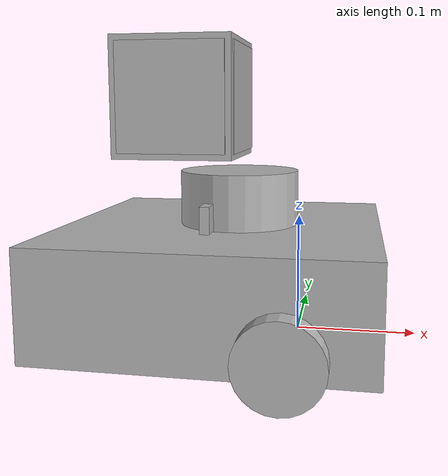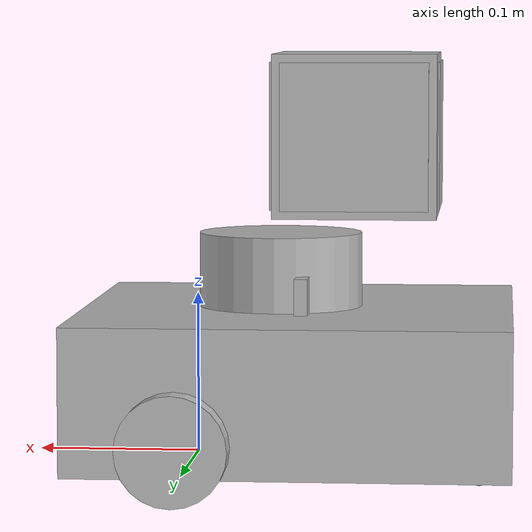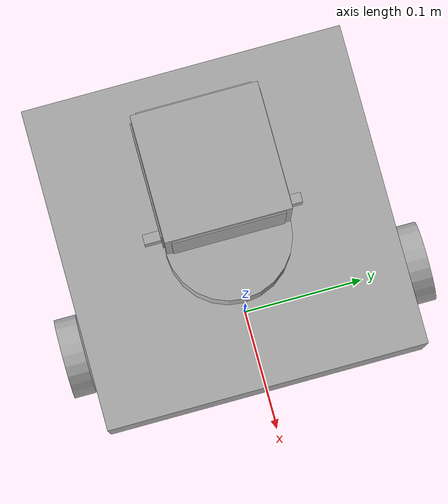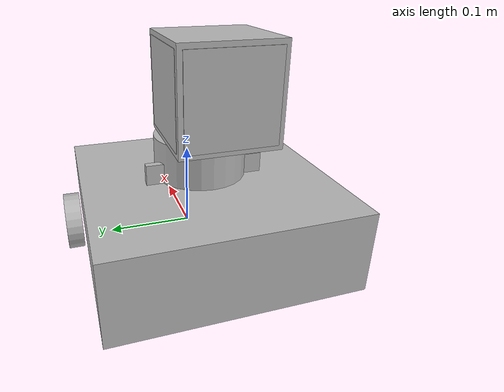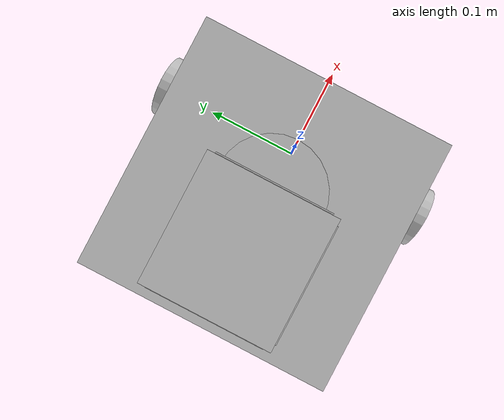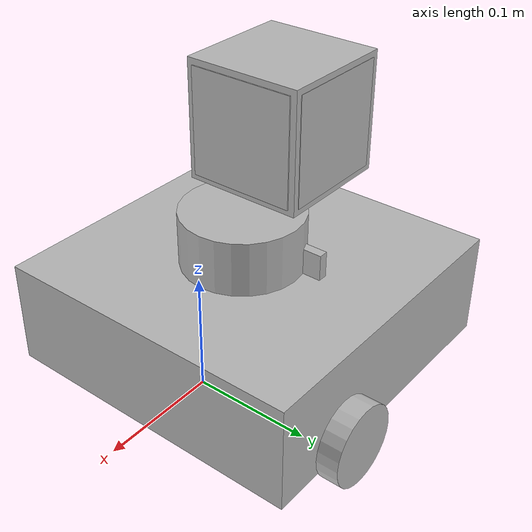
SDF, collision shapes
<?xml version="1.0" ?>
<sdf version="1.4">
  <model name="waffle_pi_1">
<pose>0 0 0 0 0 0</pose>
    <link name="base">

      <inertial>
        <pose>-0.064 0 0.048 0 0 0</pose>
        <inertia>
          <ixx>0.001</ixx>
          <ixy>0.000</ixy>
          <ixz>0.000</ixz>
          <iyy>0.001</iyy>
          <iyz>0.000</iyz>
          <izz>0.001</izz>
        </inertia>
        <mass>1.0</mass>
      </inertial>

      <collision name="base_collision">
        <pose>-0.064 0 0.048 0 0 0</pose>
        <geometry>
          <box>
            <size>0.265 0.265 0.089</size>
          </box>
        </geometry>
      </collision>

      <visual name="base_visual">
        <pose>-0.064 0 0 0 0 0</pose>
        <geometry>
          <mesh>
            <uri>model://waffle_pi_1/meshes/waffle_pi_base.dae</uri>
            <scale>0.001 0.001 0.001</scale>
          </mesh>
        </geometry>
      </visual>

      <collision name="right_caster_collision">
        <pose>-0.177 -0.064 -0.004 0 0 0</pose>
        <geometry>
          <sphere>
            <radius>0.005000</radius>
          </sphere>
        </geometry>
        <surface>
          <friction>
            <ode>
              <mu>100000.0</mu>
              <mu2>100000.0</mu2>
              <fdir1>0 0 0</fdir1>
              <slip1>0</slip1>
              <slip2>0</slip2>
            </ode>
          </friction>
        </surface>
      </collision>

      <collision name="left_caster_collision">
        <pose>-0.177 0.064 -0.004 0 0 0</pose>
        <geometry>
          <sphere>
            <radius>0.005000</radius>
          </sphere>
        </geometry>
        <surface>
          <friction>
            <ode>
              <mu>100000.0</mu>
              <mu2>100000.0</mu2>
              <fdir1>0 0 0</fdir1>
              <slip1>0</slip1>
              <slip2>0</slip2>
            </ode>
          </friction>
        </surface>
      </collision>
    </link>

    <link name="lidar">
      <inertial>
        <pose>-0.052 0 0.111 0 0 0</pose>
        <inertia>
          <ixx>0.001</ixx>
          <ixy>0.000</ixy>
          <ixz>0.000</ixz>
          <iyy>0.001</iyy>
          <iyz>0.000</iyz>
          <izz>0.001</izz>
        </inertia>
        <mass>0.125</mass>
      </inertial>

      <collision name="lidar_sensor_collision">
        <pose>-0.052 0 0.111 0 0 0</pose>
        <geometry>
          <cylinder>
            <radius>0.0508</radius>
            <length>0.055</length>
          </cylinder>
        </geometry>
      </collision>

      <visual name="lidar_sensor_visual">
        <pose>-0.064 0 0.121 0 0 0</pose>
        <geometry>
          <mesh>
            <uri>model://waffle_pi_1/meshes/lds.dae</uri>
            <scale>0.001 0.001 0.001</scale>
          </mesh>
        </geometry>
      </visual>

      <sensor name="hls_lfcd_lds" type="ray">
        <always_on>1</always_on>
        <visualize>0</visualize>
        <pose>-0.064 0 0.121 0 0 0</pose>
        <update_rate>1800</update_rate>
        <ray>
          <scan>
            <horizontal>
              <samples>360</samples>
              <resolution>1.000000</resolution>
              <min_angle>0.000000</min_angle>
              <max_angle>6.280000</max_angle>
            </horizontal>
          </scan>
          <range>
            <min>0.120000</min>
            <max>3.5</max>
            <resolution>0.015000</resolution>
          </range>
          <noise>
            <type>gaussian</type>
            <mean>0.0</mean>
            <stddev>0.01</stddev>
          </noise>
        </ray>
      </sensor>
    </link>

    <link name="image">
      <inertial>
        <pose>-0.069 0 0.104 0 0 0</pose>
        <inertia>
          <ixx>0.001</ixx>
          <ixy>0.000</ixy>
          <ixz>0.000</ixz>
          <iyy>0.001</iyy>
          <iyz>0.000</iyz>
          <izz>0.001</izz>
        </inertia>
        <mass>0.035</mass>
      </inertial>

      <collision name="image_collision">
        <pose>-0.069 0 0.104 0 0 0</pose>
        <geometry>
          <box>
            <size>0.008 0.130 0.022</size>
          </box>
        </geometry>
      </collision>

      <sensor name="raspberry_pi_cam" type="camera">
        <pose>0.076 0 0.094 0 0 0</pose>
        <always_on>1</always_on>
        <visualize>0</visualize>
        <update_rate>30</update_rate>
        <camera>
            <horizontal_fov>1.085595</horizontal_fov>
            <image>
                <width>640</width>
                <height>480</height>
                <format>R8G8B8</format>
            </image>
            <depth_camera></depth_camera>
            <clip>
                <near>0.02</near>
                <far>300</far>
            </clip>
        </camera>
      </sensor>
    </link>

    <link name="left_wheel">

      <inertial>
        <pose>0.0 0.144 0.023 -1.57 0 0</pose>
        <inertia>
          <ixx>0.001</ixx>
          <ixy>0.000</ixy>
          <ixz>0.000</ixz>
          <iyy>0.001</iyy>
          <iyz>0.000</iyz>
          <izz>0.001</izz>
        </inertia>
        <mass>0.1</mass>
      </inertial>

      <collision name="left_wheel_collision">
        <pose>0.0 0.144 0.023 -1.57 0 0</pose>
        <geometry>
          <cylinder>
            <radius>0.033</radius>
            <length>0.018</length>
          </cylinder>
        </geometry>
          <surface>
            <friction>
              <ode>
                <mu>100000.0</mu>
                <mu2>100000.0</mu2>
                <fdir1>0 0 0</fdir1>
                <slip1>0.0</slip1>
                <slip2>0.0</slip2>
              </ode>
          </friction>
        </surface>
      </collision>

      <visual name="left_wheel_visual">
        <pose>0.0 0.144 0.023 0 0 0</pose>
        <geometry>
          <mesh>
            <uri>model://waffle_pi_1/meshes/left_tire.dae</uri>
            <scale>0.001 0.001 0.001</scale>
          </mesh>
        </geometry>
      </visual>
    </link>

    <link name="right_wheel">

      <inertial>
        <pose>0.0 -0.144 0.023 -1.57 0 0</pose>
        <inertia>
          <ixx>0.001</ixx>
          <ixy>0.000</ixy>
          <ixz>0.000</ixz>
          <iyy>0.001</iyy>
          <iyz>0.000</iyz>
          <izz>0.001</izz>
        </inertia>
        <mass>0.1</mass>
      </inertial>

      <collision name="right_wheel_collision">
        <pose>0.0 -0.144 0.023 -1.57 0 0</pose>
        <geometry>
          <cylinder>
            <radius>0.033</radius>
            <length>0.018</length>
          </cylinder>
        </geometry>
          <surface>
            <friction>
              <ode>
                <mu>100000.0</mu>
                <mu2>100000.0</mu2>
                <fdir1>0 0 0</fdir1>
                <slip1>0.0</slip1>
                <slip2>0.0</slip2>
              </ode>
          </friction>
        </surface>
      </collision>

      <visual name="right_wheel_visual">
        <pose>0.0 -0.144 0.023 0 0 0</pose>
        <geometry>
          <mesh>
            <uri>model://waffle_pi_1/meshes/right_tire.dae</uri>
            <scale>0.001 0.001 0.001</scale>
          </mesh>
        </geometry>
      </visual>
    </link>

    <joint name="left_wheel_joint" type="revolute">
      <parent>base</parent>
      <child>left_wheel</child>
      <pose>0.0 0.144 0.023 -1.57 0 0</pose>
      <axis>
        <xyz>0 1 0</xyz>
      </axis>
    </joint>

    <joint name="right_wheel_joint" type="revolute">
      <parent>base</parent>
      <child>right_wheel</child>
      <pose>0.0 -0.144 0.023 -1.57 0 0</pose>
      <axis>
        <xyz>0 1 0</xyz>
      </axis>
    </joint>

    <joint name="lidar_joint" type="fixed">
      <parent>base</parent>
      <child>lidar</child>
      <pose>-0.064 0 0.121 0 0 0</pose>
      <axis>
        <xyz>0 0 1</xyz>
        <use_parent_model_frame>true</use_parent_model_frame>
      </axis>
    </joint>

    <joint name="image_joint" type="fixed">
      <parent>base</parent>
      <child>image</child>
      <pose>0.064 -0.065 0.094 0 0 0</pose>
      <axis>
        <xyz>0 0 1</xyz>
        <use_parent_model_frame>true</use_parent_model_frame>
      </axis>
    </joint>

  <model name="aruco_cube_1">
  <pose>-0.1 0 0.2 0 0 0</pose>

  <link name="base_cube">
        <collision name="collision_base">
          <geometry>
            <box>
              <size>0.1 0.1 0.1</size>
            </box>
          </geometry>
        </collision>
        <visual name="visual_base">
          <geometry>
            <box>
              <size>0.1 0.1 0.1</size>
            </box>
          </geometry>
        </visual>
    </link>

   <link name="artag_11">
      <pose>0.051 0 0 -1.57079633 0 -1.57079633</pose>
      <visual name="visual_artag_11">
        <geometry>
          <mesh>
            <uri>model://waffle_pi_1/meshes/artag_11.dae</uri>
          </mesh>
        </geometry>
      </visual>
      <collision name="collision_artag_11" >
        <geometry>
          <box>
            <size>0.09 0.09 0.001</size>
          </box>
        </geometry>
        <surface>
          <contact>
            <ode>
              <max_vel>0.1</max_vel>
              <min_depth>0.001</min_depth>
            </ode>
          </contact>
          <friction>
            <ode>
              <mu>1.0</mu>
              <mu2>1.0</mu2>
            </ode>
          </friction>
        </surface>
      </collision>
    </link>

  <link name="artag_12">
      <pose>0 -0.051 0 -1.57079633 0 -3.14159265</pose>
      <visual name="visual_artag_12">
        <geometry>
          <mesh>
            <uri>model://waffle_pi_1/meshes/artag_12.dae</uri>
          </mesh>
        </geometry>
      </visual>
      <collision name="collision_artag_12" >
        <geometry>
          <box>
            <size>0.09 0.09 0.001</size>
          </box>
        </geometry>
        <surface>
          <contact>
            <ode>
              <max_vel>0.1</max_vel>
              <min_depth>0.001</min_depth>
            </ode>
          </contact>
          <friction>
            <ode>
              <mu>1.0</mu>
              <mu2>1.0</mu2>
            </ode>
          </friction>
        </surface>
      </collision>
    </link>

   <link name="artag_13">
      <pose>-0.051 0 0 1.57079633 1.57079633 1.57079633</pose>
      <visual name="visual_artag_13">
        <geometry>
          <mesh>
            <uri>model://waffle_pi_1/meshes/artag_13.dae</uri>
          </mesh>
        </geometry>
      </visual>
      <collision name="collision_artag_13" >
        <geometry>
          <box>
            <size>0.09 0.09 0.001</size>
          </box>
        </geometry>
        <surface>
          <contact>
            <ode>
              <max_vel>0.1</max_vel>
              <min_depth>0.001</min_depth>
            </ode>
          </contact>
          <friction>
            <ode>
              <mu>1.0</mu>
              <mu2>1.0</mu2>
            </ode>
          </friction>
        </surface>
      </collision>
    </link>

  <link name="artag_14">
      <pose>0 0.05 0  -1.57079633 0 0</pose>
      <visual name="visual_artag_14">
        <geometry>
          <mesh>
            <uri>model://waffle_pi_1/meshes/artag_14.dae</uri>
          </mesh>
        </geometry>
      </visual>
      <collision name="collision_artag_14" >
        <geometry>
          <box>
            <size>0.09 0.09 0.001</size>
          </box>
        </geometry>
        <surface>
          <contact>
            <ode>
              <max_vel>0.1</max_vel>
              <min_depth>0.001</min_depth>
            </ode>
          </contact>
          <friction>
            <ode>
              <mu>1.0</mu>
              <mu2>1.0</mu2>
            </ode>
          </friction>
        </surface>
      </collision>
    </link>

  <joint name="base_to_tag11" type="fixed">
      <pose>0 0 0 0 0 0</pose>
      <parent>base_cube</parent>
      <child>artag_11</child>
      <axis>
        <dynamics>
          <damping>1</damping>
          <friction>0</friction>
        </dynamics>
        <limit>
          <effort>1.0</effort>
        </limit>
        <xyz>1 0 0</xyz>
        <use_parent_model_frame>true</use_parent_model_frame>
      </axis>
    </joint>

  <joint name="base_to_tag12" type="fixed">
      <pose>0 0 0 0 0 0</pose>
      <parent>base_cube</parent>
      <child>artag_12</child>
      <axis>
        <dynamics>
          <damping>1</damping>
          <friction>0</friction>
        </dynamics>
        <limit>
          <effort>1.0</effort>
        </limit>
        <xyz>0 -1 0</xyz>
        <use_parent_model_frame>true</use_parent_model_frame>
      </axis>
    </joint>

  <joint name="base_to_tag13" type="fixed">
      <pose>0 0 0 0 0 0</pose>
      <parent>base_cube</parent>
      <child>artag_13</child>
      <axis>
        <dynamics>
          <damping>1</damping>
          <friction>0</friction>
        </dynamics>
        <limit>
          <effort>1.0</effort>
        </limit>
        <xyz>-1 0 0</xyz>
        <use_parent_model_frame>true</use_parent_model_frame>
      </axis>
    </joint>

   <joint name="base_to_tag14" type="fixed">
      <pose>0 0 0 0 0 0</pose>
      <parent>base_cube</parent>
      <child>artag_14</child>
      <axis>
        <dynamics>
          <damping>1</damping>
          <friction>0</friction>
        </dynamics>
        <limit>
          <effort>1.0</effort>
        </limit>
        <xyz>0 1 0</xyz>
        <use_parent_model_frame>true</use_parent_model_frame>
      </axis>
    </joint>

   </model>

<joint name="base_to_cube" type="fixed">
      <pose>0 0 0 0 0 0</pose>
      <parent>base</parent>
      <child>aruco_cube_1</child>
      <axis>
        <dynamics>
          <damping>1</damping>
          <friction>0</friction>
        </dynamics>
        <limit>
          <effort>1.0</effort>
        </limit>
        <xyz>0 0 1</xyz>
        <use_parent_model_frame>true</use_parent_model_frame>
      </axis>
    </joint>

  </model>
</sdf>
